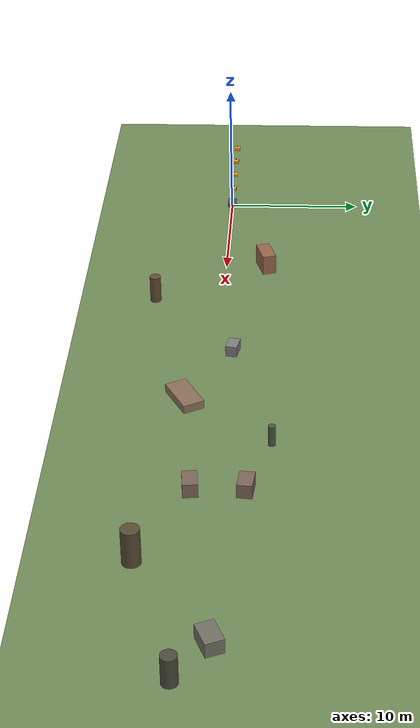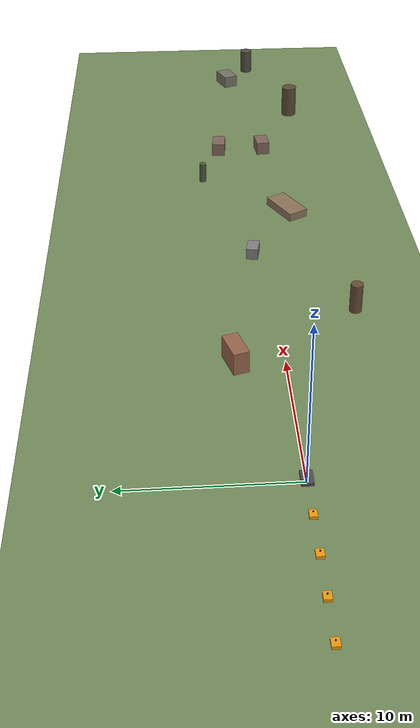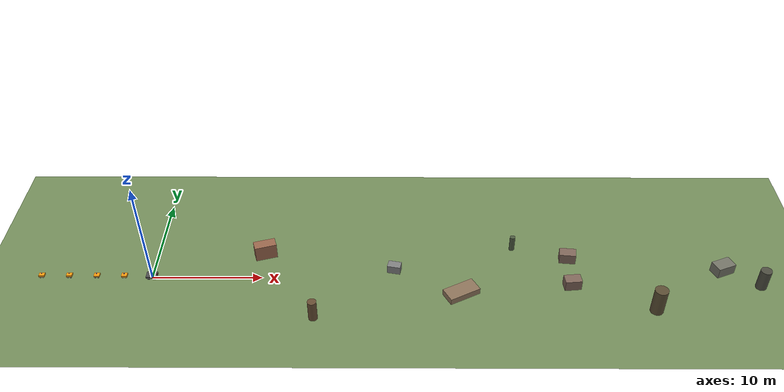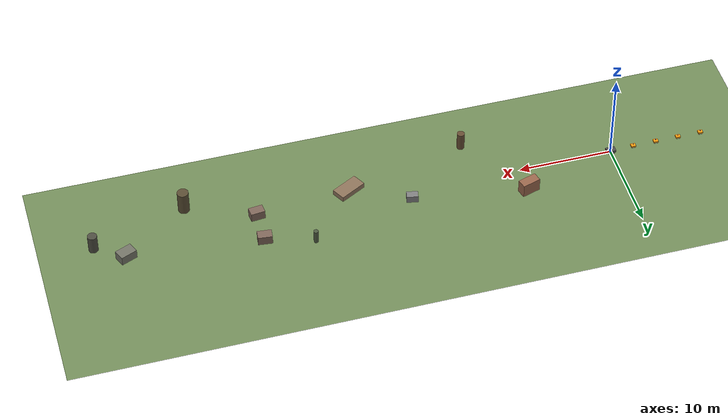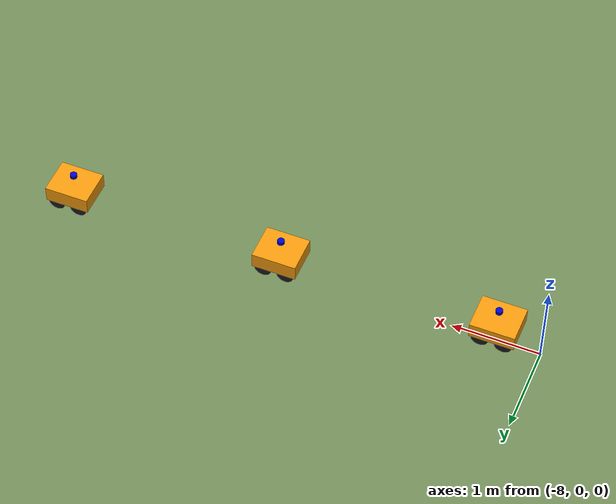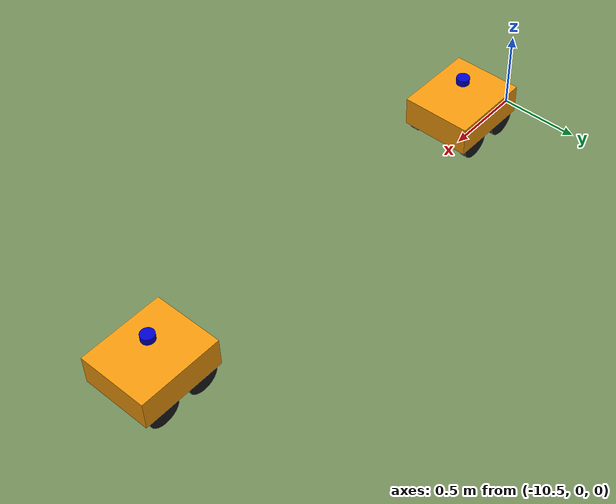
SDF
<?xml version="1.0"?>
<sdf version="1.9">
  <world name="phase1_region2_obstacles">

    <!-- Physics engine — computes gravity, collisions, forces every timestep -->
    <plugin filename="gz-sim-physics-system"
            name="gz::sim::systems::Physics">
    </plugin>

    <!-- Lets you spawn/delete models from the GUI or command line -->
    <plugin filename="gz-sim-user-commands-system"
            name="gz::sim::systems::UserCommands">
    </plugin>

    <!-- Sends the 3D scene to the Gazebo GUI so you can see it -->
    <plugin filename="gz-sim-scene-broadcaster-system"
            name="gz::sim::systems::SceneBroadcaster">
    </plugin>

    <plugin filename="gz-sim-sensors-system"
            name="gz::sim::systems::Sensors">
      <render_engine>ogre2</render_engine>
    </plugin>

    <!--
      IMU system — required for IMU sensors to publish data.
      Separate from the Sensors plugin (which handles rendering sensors).
    -->
    <plugin filename="gz-sim-imu-system"
            name="gz::sim::systems::Imu">
    </plugin>

    <plugin filename="gz-sim-navsat-system"
            name="gz::sim::systems::NavSat">
    </plugin>

    <!-- Contact system — detects physical contacts between objects -->
    <plugin filename="gz-sim-contact-system"
            name="gz::sim::systems::Contact">
    </plugin>

    <!-- ══════════════════════════════════════════════════════════
         WORLD SETTINGS
         ══════════════════════════════════════════════════════════ -->

    <!-- Gravity: 9.8 m/s² downward (Earth standard) -->
    <gravity>0 0 -9.8</gravity>

    <!-- Magnetic field (for IMU magnetometer, approximate for Detroit MI) -->
    <magnetic_field>5.5645e-6 2.28758e-5 -4.23884e-5</magnetic_field>

    <spherical_coordinates>
      <surface_model>EARTH_WGS84</surface_model>
      <world_frame_orientation>ENU</world_frame_orientation>
      <latitude_deg>42.4129540624</latitude_deg>
      <longitude_deg>-83.1360653105</longitude_deg>
      <elevation>190.0</elevation>
      <heading_deg>0</heading_deg>
    </spherical_coordinates>

    <!-- Physics timestep: 1ms = 1000 Hz. Standard for ground robots. -->
    <physics name="1ms" type="ode">
      <max_step_size>0.001</max_step_size>
      <real_time_factor>1.0</real_time_factor>
      <dart>
        <collision_detector>bullet</collision_detector>
      </dart>
    </physics>

    <!-- ══════════════════════════════════════════════════════════
         SCENE — lighting and sky
         ══════════════════════════════════════════════════════════ -->
    <scene>
      <ambient>0.4 0.4 0.4 1</ambient>
      <background>0.7 0.85 1.0 1</background>  <!-- light blue sky -->
      <shadows>true</shadows>
    </scene>

    <!-- Sun: directional light from above-left, casts shadows -->
    <light type="directional" name="sun">
      <cast_shadows>true</cast_shadows>
      <pose>0 0 100 0 0 0</pose>
      <diffuse>0.9 0.9 0.9 1</diffuse>
      <specular>0.3 0.3 0.3 1</specular>
      <attenuation>
        <range>1000</range>
        <constant>0.9</constant>
        <linear>0.01</linear>
        <quadratic>0.001</quadratic>
      </attenuation>
      <direction>-0.5 0.1 -0.9</direction>
    </light>

    <model name="ground_plane">
      <static>true</static>
      <link name="link">
        <collision name="collision">
          <geometry>
            <plane>
              <normal>0 0 1</normal>  <!-- Z-up -->
              <size>200 200</size>
            </plane>
          </geometry>
          <surface>
            <friction>
              <ode><mu>1.0</mu><mu2>1.0</mu2></ode>
            </friction>
          </surface>
        </collision>

        <visual name="visual">
          <geometry>
            <plane>
              <normal>0 0 1</normal>
              <size>200 200</size>
            </plane>
          </geometry>
          <material>
            <ambient>0.45 0.55 0.35 1</ambient>
            <diffuse>0.45 0.55 0.35 1</diffuse>  <!-- olive green, like grass -->
          </material>
        </visual>
      </link>
    </model>

    <!-- Large box — simulates collapsed wall or rubble pile -->
    <model name="obstacle_box_1">
      <static>true</static>
      <pose>10 3 0.75 0 0 0.3</pose>  <!-- slightly rotated -->
      <link name="link">
        <collision name="c"><geometry><box><size>2.0 1.0 1.5</size></box></geometry></collision>
        <visual name="v"><geometry><box><size>2.0 1.0 1.5</size></box></geometry>
          <material><ambient>0.6 0.4 0.3 1</ambient><diffuse>0.6 0.4 0.3 1</diffuse></material>
        </visual>
      </link>
    </model>

    <!-- Cylinder — tree trunk or pillar -->
    <model name="obstacle_cyl_1">
      <static>true</static>
      <pose>15 -5 1.0 0 0 0</pose>
      <link name="link">
        <collision name="c"><geometry><cylinder><radius>0.4</radius><length>2.0</length></cylinder></geometry></collision>
        <visual name="v"><geometry><cylinder><radius>0.4</radius><length>2.0</length></cylinder></geometry>
          <material><ambient>0.4 0.3 0.2 1</ambient><diffuse>0.4 0.3 0.2 1</diffuse></material>
        </visual>
      </link>
    </model>

    <!-- Small box — debris -->
    <model name="obstacle_box_2">
      <static>true</static>
      <pose>22 1 0.4 0 0 -0.2</pose>
      <link name="link">
        <collision name="c"><geometry><box><size>1.2 0.8 0.8</size></box></geometry></collision>
        <visual name="v"><geometry><box><size>1.2 0.8 0.8</size></box></geometry>
          <material><ambient>0.5 0.5 0.5 1</ambient><diffuse>0.5 0.5 0.5 1</diffuse></material>
        </visual>
      </link>
    </model>

    <!-- Wide low box — forces the robot to go around, not over -->
    <model name="obstacle_box_3">
      <static>true</static>
      <pose>28 -2 0.3 0 0 0.5</pose>
      <link name="link">
        <collision name="c"><geometry><box><size>3.0 1.5 0.6</size></box></geometry></collision>
        <visual name="v"><geometry><box><size>3.0 1.5 0.6</size></box></geometry>
          <material><ambient>0.55 0.45 0.35 1</ambient><diffuse>0.55 0.45 0.35 1</diffuse></material>
        </visual>
      </link>
    </model>

    <!-- Cylinder — narrow but tall, easy to miss -->
    <model name="obstacle_cyl_2">
      <static>true</static>
      <pose>33 4 0.75 0 0 0</pose>
      <link name="link">
        <collision name="c"><geometry><cylinder><radius>0.25</radius><length>1.5</length></cylinder></geometry></collision>
        <visual name="v"><geometry><cylinder><radius>0.25</radius><length>1.5</length></cylinder></geometry>
          <material><ambient>0.3 0.35 0.25 1</ambient><diffuse>0.3 0.35 0.25 1</diffuse></material>
        </visual>
      </link>
    </model>

    <!-- Two boxes forming a narrow gap — tests tight maneuvering -->
    <model name="obstacle_box_4">
      <static>true</static>
      <pose>38 -1 0.5 0 0 0.1</pose>
      <link name="link">
        <collision name="c"><geometry><box><size>1.5 1.0 1.0</size></box></geometry></collision>
        <visual name="v"><geometry><box><size>1.5 1.0 1.0</size></box></geometry>
          <material><ambient>0.5 0.4 0.35 1</ambient><diffuse>0.5 0.4 0.35 1</diffuse></material>
        </visual>
      </link>
    </model>

    <model name="obstacle_box_5">
      <static>true</static>
      <pose>38 2.5 0.5 0 0 -0.1</pose>
      <link name="link">
        <collision name="c"><geometry><box><size>1.5 1.0 1.0</size></box></geometry></collision>
        <visual name="v"><geometry><box><size>1.5 1.0 1.0</size></box></geometry>
          <material><ambient>0.5 0.4 0.35 1</ambient><diffuse>0.5 0.4 0.35 1</diffuse></material>
        </visual>
      </link>
    </model>

    <!-- Large cylinder — big tree -->
    <model name="obstacle_cyl_3">
      <static>true</static>
      <pose>45 -4 1.25 0 0 0</pose>
      <link name="link">
        <collision name="c"><geometry><cylinder><radius>0.6</radius><length>2.5</length></cylinder></geometry></collision>
        <visual name="v"><geometry><cylinder><radius>0.6</radius><length>2.5</length></cylinder></geometry>
          <material><ambient>0.35 0.3 0.2 1</ambient><diffuse>0.35 0.3 0.2 1</diffuse></material>
        </visual>
      </link>
    </model>

    <!-- Box near the destination — last obstacle -->
    <model name="obstacle_box_6">
      <static>true</static>
      <pose>52 1 0.5 0 0 0.4</pose>
      <link name="link">
        <collision name="c"><geometry><box><size>1.8 1.2 1.0</size></box></geometry></collision>
        <visual name="v"><geometry><box><size>1.8 1.2 1.0</size></box></geometry>
          <material><ambient>0.45 0.45 0.4 1</ambient><diffuse>0.45 0.45 0.4 1</diffuse></material>
        </visual>
      </link>
    </model>

    <!-- Cylinder right before destination — forces a final turn -->
    <model name="obstacle_cyl_4">
      <static>true</static>
      <pose>55 -1 1.0 0 0 0</pose>
      <link name="link">
        <collision name="c"><geometry><cylinder><radius>0.5</radius><length>2.0</length></cylinder></geometry></collision>
        <visual name="v"><geometry><cylinder><radius>0.5</radius><length>2.0</length></cylinder></geometry>
          <material><ambient>0.3 0.3 0.25 1</ambient><diffuse>0.3 0.3 0.25 1</diffuse></material>
        </visual>
      </link>
    </model>

    <include>
      <uri>model://husky_leader</uri>
      <name>leader</name>
      <pose>0 0 0.3 0 0 0</pose>
    </include>

    <include>
      <uri>model://follower_1</uri>
      <name>follower_1</name>
      <pose>-2.5 0 0.3 0 0 0</pose>
    </include>

    <include>
      <uri>model://follower_2</uri>
      <name>follower_2</name>
      <pose>-5.0 0 0.3 0 0 0</pose>
    </include>

    <include>
      <uri>model://follower_3</uri>
      <name>follower_3</name>
      <pose>-7.5 0 0.3 0 0 0</pose>
    </include>

    <include>
      <uri>model://follower_4</uri>
      <name>follower_4</name>
      <pose>-10.0 0 0.3 0 0 0</pose>
    </include>

  </world>
</sdf>

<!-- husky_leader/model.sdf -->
<sdf version="1.9">
  <model name="husky_leader">

    <!--
      static = false means physics applies (gravity, collisions, forces).
      If true, the robot would float in place and ignore cmd_vel.
    -->
    <static>false</static>

    <link name="base_link">
      <inertial>
        <mass>50.0</mass>
        <inertia>
          <ixx>1.0417</ixx>
          <iyy>1.5042</iyy>
          <izz>2.1042</izz>
          <ixy>0</ixy>
          <ixz>0</ixz>
          <iyz>0</iyz>
        </inertia>
      </inertial>

      <!--
        Collision: the shape Gazebo uses to detect contacts.
        Simpler than visual — a box is fine for a rectangular robot.
      -->
      <collision name="chassis_collision">
        <geometry>
          <box><size>0.99 0.67 0.20</size></box>
        </geometry>
      </collision>

      <visual name="chassis_visual">
        <geometry>
          <box><size>0.99 0.67 0.20</size></box>
        </geometry>
        <material>
          <ambient>0.2 0.2 0.2 1</ambient>
          <diffuse>0.3 0.3 0.3 1</diffuse>  <!-- dark grey, like a real Husky -->
        </material>
      </visual>

      <sensor name="imu_sensor" type="imu">
        <always_on>true</always_on>
        <update_rate>100</update_rate>  <!-- 100 Hz, typical for IMU -->
        <topic>leader/imu/data</topic>
        <imu>
          <angular_velocity>
            <x><noise type="gaussian"><mean>0</mean><stddev>0.001</stddev></noise></x>
            <y><noise type="gaussian"><mean>0</mean><stddev>0.001</stddev></noise></y>
            <z><noise type="gaussian"><mean>0</mean><stddev>0.001</stddev></noise></z>
          </angular_velocity>
          <linear_acceleration>
            <x><noise type="gaussian"><mean>0</mean><stddev>0.01</stddev></noise></x>
            <y><noise type="gaussian"><mean>0</mean><stddev>0.01</stddev></noise></y>
            <z><noise type="gaussian"><mean>0</mean><stddev>0.01</stddev></noise></z>
          </linear_acceleration>
        </imu>
      </sensor>

      <sensor name="navsat_sensor" type="navsat">
        <always_on>true</always_on>
        <update_rate>5</update_rate>  <!-- 5 Hz, typical for GPS modules -->
        <topic>leader/navsat</topic>
        <navsat>
          <position_sensing>
            <horizontal>
              <!-- Noise here is applied directly to lat/lon (degrees), not meters.
                   0.5 m of real-world GPS error ≈ 0.5 / 111320 deg ≈ 0.0000045 deg. -->
              <noise type="gaussian"><mean>0</mean><stddev>0.0000045</stddev></noise>
            </horizontal>
            <vertical>
              <!-- Altitude stays in meters, so 1.0 m stddev is fine as-is. -->
              <noise type="gaussian"><mean>0</mean><stddev>1.0</stddev></noise>
            </vertical>
          </position_sensing>
        </navsat>
      </sensor>

    </link>

    <link name="lidar_link">
      <pose relative_to="base_link">0 0 0.20 0 0 0</pose>
      <!-- x y z  roll pitch yaw — 0.20m above chassis center -->

      <inertial>
        <mass>0.5</mass>
        <inertia>
          <ixx>0.001</ixx><iyy>0.001</iyy><izz>0.001</izz>
          <ixy>0</ixy><ixz>0</ixz><iyz>0</iyz>
        </inertia>
      </inertial>

      <collision name="lidar_collision">
        <geometry><cylinder><radius>0.05</radius><length>0.05</length></cylinder></geometry>
      </collision>

      <visual name="lidar_visual">
        <geometry><cylinder><radius>0.05</radius><length>0.05</length></cylinder></geometry>
        <material>
          <ambient>0.0 0.0 0.8 1</ambient>
          <diffuse>0.0 0.0 0.8 1</diffuse>  <!-- blue cylinder -->
        </material>
      </visual>

      <sensor name="lidar_sensor" type="gpu_lidar">
        <always_on>true</always_on>
        <update_rate>10</update_rate>  <!-- 10 Hz scan rate -->
        <topic>leader/scan</topic>
        <lidar>
          <scan>
            <horizontal>
              <samples>360</samples>        <!-- one ray per degree -->
              <resolution>1</resolution>
              <min_angle>-3.14159</min_angle>
              <max_angle>3.14159</max_angle>
            </horizontal>
          </scan>
          <range>
            <min>0.15</min>   <!-- ignore anything closer than 15 cm -->
            <max>30.0</max>   <!-- 30 m max range -->
            <resolution>0.01</resolution>
          </range>
          <noise>
            <type>gaussian</type>
            <mean>0</mean>
            <stddev>0.01</stddev>
          </noise>
        </lidar>
      </sensor>

    </link>

    <!-- Fixed joint: bolt the lidar mount to the chassis -->
    <joint name="lidar_joint" type="fixed">
      <parent>base_link</parent>
      <child>lidar_link</child>
    </joint>

    <link name="camera_link">
      <!-- Mounted at front of chassis, looking forward -->
      <pose relative_to="base_link">0.49 0 0.15 0 0 0</pose>

      <inertial>
        <mass>0.2</mass>
        <inertia>
          <ixx>0.0001</ixx><iyy>0.0001</iyy><izz>0.0001</izz>
          <ixy>0</ixy><ixz>0</ixz><iyz>0</iyz>
        </inertia>
      </inertial>

      <collision name="camera_collision">
        <geometry><box><size>0.04 0.08 0.04</size></box></geometry>
      </collision>

      <visual name="camera_visual">
        <geometry><box><size>0.04 0.08 0.04</size></box></geometry>
        <material>
          <ambient>0.8 0.0 0.0 1</ambient>
          <diffuse>0.8 0.0 0.0 1</diffuse>  <!-- red box -->
        </material>
      </visual>

      <sensor name="camera_sensor" type="camera">
        <always_on>true</always_on>
        <update_rate>30</update_rate>
        <topic>leader/camera/image</topic>
        <camera>
          <horizontal_fov>1.3962634</horizontal_fov>
          <image>
            <width>640</width>
            <height>480</height>
            <format>R8G8B8</format>
          </image>
          <clip>
            <near>0.1</near>
            <far>100.0</far>
          </clip>
          <noise>
            <type>gaussian</type>
            <mean>0</mean>
            <stddev>0.005</stddev>
          </noise>
        </camera>
      </sensor>

    </link>

    <joint name="camera_joint" type="fixed">
      <parent>base_link</parent>
      <child>camera_link</child>
    </joint>

    <!-- ── FRONT LEFT WHEEL ── -->
    <link name="front_left_wheel">
      <pose relative_to="base_link">0.256 0.2855 -0.1 -1.5708 0 0</pose>

      <inertial>
        <mass>2.5</mass>
        <inertia>
          <ixx>0.0073</ixx><iyy>0.0073</iyy><izz>0.0036</izz>
          <ixy>0</ixy><ixz>0</ixz><iyz>0</iyz>
        </inertia>
      </inertial>

      <collision name="collision">
        <geometry><cylinder><radius>0.17</radius><length>0.08</length></cylinder></geometry>
        <surface>
          <friction>
            <ode><mu>1.0</mu><mu2>0.5</mu2></ode>
          </friction>
          <contact>
            <ode><kp>1e6</kp><kd>500</kd></ode>
          </contact>
        </surface>
      </collision>

      <visual name="visual">
        <geometry><cylinder><radius>0.17</radius><length>0.08</length></cylinder></geometry>
        <material>
          <ambient>0.1 0.1 0.1 1</ambient>
          <diffuse>0.1 0.1 0.1 1</diffuse>  <!-- black wheels -->
        </material>
      </visual>
    </link>

    <joint name="front_left_wheel_joint" type="revolute">
      <parent>base_link</parent>
      <child>front_left_wheel</child>
      <axis>
        <xyz>0 0 1</xyz>  <!-- rotation axis: Z in wheel frame = Y in world (because of the roll) -->
        <limit><lower>-1e16</lower><upper>1e16</upper></limit>  <!-- unlimited rotation -->
      </axis>
    </joint>

    <!-- ── FRONT RIGHT WHEEL ── -->
    <link name="front_right_wheel">
      <pose relative_to="base_link">0.256 -0.2855 -0.1 -1.5708 0 0</pose>

      <inertial>
        <mass>2.5</mass>
        <inertia>
          <ixx>0.0073</ixx><iyy>0.0073</iyy><izz>0.0036</izz>
          <ixy>0</ixy><ixz>0</ixz><iyz>0</iyz>
        </inertia>
      </inertial>

      <collision name="collision">
        <geometry><cylinder><radius>0.17</radius><length>0.08</length></cylinder></geometry>
        <surface>
          <friction>
            <ode><mu>1.0</mu><mu2>0.5</mu2></ode>
          </friction>
          <contact>
            <ode><kp>1e6</kp><kd>500</kd></ode>
          </contact>
        </surface>
      </collision>

      <visual name="visual">
        <geometry><cylinder><radius>0.17</radius><length>0.08</length></cylinder></geometry>
        <material>
          <ambient>0.1 0.1 0.1 1</ambient>
          <diffuse>0.1 0.1 0.1 1</diffuse>
        </material>
      </visual>
    </link>

    <joint name="front_right_wheel_joint" type="revolute">
      <parent>base_link</parent>
      <child>front_right_wheel</child>
      <axis>
        <xyz>0 0 1</xyz>
        <limit><lower>-1e16</lower><upper>1e16</upper></limit>
      </axis>
    </joint>

    <!-- ── REAR LEFT WHEEL ── -->
    <link name="rear_left_wheel">
      <pose relative_to="base_link">-0.256 0.2855 -0.1 -1.5708 0 0</pose>

      <inertial>
        <mass>2.5</mass>
        <inertia>
          <ixx>0.0073</ixx><iyy>0.0073</iyy><izz>0.0036</izz>
          <ixy>0</ixy><ixz>0</ixz><iyz>0</iyz>
        </inertia>
      </inertial>

      <collision name="collision">
        <geometry><cylinder><radius>0.17</radius><length>0.08</length></cylinder></geometry>
        <surface>
          <friction>
            <ode><mu>1.0</mu><mu2>0.5</mu2></ode>
          </friction>
          <contact>
            <ode><kp>1e6</kp><kd>500</kd></ode>
          </contact>
        </surface>
      </collision>

      <visual name="visual">
        <geometry><cylinder><radius>0.17</radius><length>0.08</length></cylinder></geometry>
        <material>
          <ambient>0.1 0.1 0.1 1</ambient>
          <diffuse>0.1 0.1 0.1 1</diffuse>
        </material>
      </visual>
    </link>

    <joint name="rear_left_wheel_joint" type="revolute">
      <parent>base_link</parent>
      <child>rear_left_wheel</child>
      <axis>
        <xyz>0 0 1</xyz>
        <limit><lower>-1e16</lower><upper>1e16</upper></limit>
      </axis>
    </joint>

    <!-- ── REAR RIGHT WHEEL ── -->
    <link name="rear_right_wheel">
      <pose relative_to="base_link">-0.256 -0.2855 -0.1 -1.5708 0 0</pose>

      <inertial>
        <mass>2.5</mass>
        <inertia>
          <ixx>0.0073</ixx><iyy>0.0073</iyy><izz>0.0036</izz>
          <ixy>0</ixy><ixz>0</ixz><iyz>0</iyz>
        </inertia>
      </inertial>

      <collision name="collision">
        <geometry><cylinder><radius>0.17</radius><length>0.08</length></cylinder></geometry>
        <surface>
          <friction>
            <ode><mu>1.0</mu><mu2>0.5</mu2></ode>
          </friction>
          <contact>
            <ode><kp>1e6</kp><kd>500</kd></ode>
          </contact>
        </surface>
      </collision>

      <visual name="visual">
        <geometry><cylinder><radius>0.17</radius><length>0.08</length></cylinder></geometry>
        <material>
          <ambient>0.1 0.1 0.1 1</ambient>
          <diffuse>0.1 0.1 0.1 1</diffuse>
        </material>
      </visual>
    </link>

    <joint name="rear_right_wheel_joint" type="revolute">
      <parent>base_link</parent>
      <child>rear_right_wheel</child>
      <axis>
        <xyz>0 0 1</xyz>
        <limit><lower>-1e16</lower><upper>1e16</upper></limit>
      </axis>
    </joint>

    <plugin filename="gz-sim-diff-drive-system"
            name="gz::sim::systems::DiffDrive">
      <left_joint>front_left_wheel_joint</left_joint>
      <left_joint>rear_left_wheel_joint</left_joint>
      <right_joint>front_right_wheel_joint</right_joint>
      <right_joint>rear_right_wheel_joint</right_joint>
      <wheel_separation>0.571</wheel_separation>
      <wheel_radius>0.17</wheel_radius>
      <max_linear_acceleration>1.0</max_linear_acceleration>
      <max_angular_acceleration>2.0</max_angular_acceleration>
      <max_linear_velocity>2.0</max_linear_velocity>
      <min_linear_velocity>-2.0</min_linear_velocity>
      <max_angular_velocity>2.0</max_angular_velocity>
      <min_angular_velocity>-2.0</min_angular_velocity>
      <topic>leader/cmd_vel</topic>
      <odom_topic>leader/odom</odom_topic>
      <tf_topic>leader/tf</tf_topic>
      <odom_publish_frequency>50</odom_publish_frequency>
    </plugin>

    <!--
      JointStatePublisher: publishes joint positions + velocities.
      Needed by robot_state_publisher to know wheel angles for TF.
    -->
    <plugin filename="gz-sim-joint-state-publisher-system"
            name="gz::sim::systems::JointStatePublisher">
      <topic>leader/joint_states</topic>
    </plugin>

  </model>
</sdf>

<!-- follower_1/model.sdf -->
<sdf version="1.9">
  <model name="follower_1">
    <static>false</static>

    <link name="base_link">
      <inertial>
        <mass>17.0</mass>
        <inertia>
          <ixx>0.3099</ixx>
          <iyy>0.4136</iyy>
          <izz>0.6275</izz>
          <ixy>0</ixy><ixz>0</ixz><iyz>0</iyz>
        </inertia>
      </inertial>

      <collision name="chassis_collision">
        <geometry><box><size>0.508 0.43 0.184</size></box></geometry>
      </collision>

      <visual name="chassis_visual">
        <geometry><box><size>0.508 0.43 0.184</size></box></geometry>
        <material>
          <ambient>0.85 0.55 0.05 1</ambient>
          <diffuse>0.95 0.6 0.05 1</diffuse>  <!-- Jackal yellow, to visually tell followers from the leader -->
        </material>
      </visual>

      <sensor name="imu_sensor" type="imu">
        <always_on>true</always_on>
        <update_rate>100</update_rate>
        <topic>follower_1/imu/data</topic>
        <imu>
          <angular_velocity>
            <x><noise type="gaussian"><mean>0</mean><stddev>0.001</stddev></noise></x>
            <y><noise type="gaussian"><mean>0</mean><stddev>0.001</stddev></noise></y>
            <z><noise type="gaussian"><mean>0</mean><stddev>0.001</stddev></noise></z>
          </angular_velocity>
          <linear_acceleration>
            <x><noise type="gaussian"><mean>0</mean><stddev>0.01</stddev></noise></x>
            <y><noise type="gaussian"><mean>0</mean><stddev>0.01</stddev></noise></y>
            <z><noise type="gaussian"><mean>0</mean><stddev>0.01</stddev></noise></z>
          </linear_acceleration>
        </imu>
      </sensor>

      <sensor name="navsat_sensor" type="navsat">
        <always_on>true</always_on>
        <update_rate>5</update_rate>
        <topic>follower_1/navsat</topic>
        <navsat>
          <position_sensing>
            <horizontal>
              <noise type="gaussian"><mean>0</mean><stddev>0.0000045</stddev></noise>
            </horizontal>
            <vertical>
              <noise type="gaussian"><mean>0</mean><stddev>1.0</stddev></noise>
            </vertical>
          </position_sensing>
        </navsat>
      </sensor>
    </link>

    <link name="lidar_link">
      <pose relative_to="base_link">0 0 0.192 0 0 0</pose>
      <inertial>
        <mass>0.3</mass>
        <inertia><ixx>0.0005</ixx><iyy>0.0005</iyy><izz>0.0005</izz><ixy>0</ixy><ixz>0</ixz><iyz>0</iyz></inertia>
      </inertial>
      <collision name="lidar_collision">
        <geometry><cylinder><radius>0.04</radius><length>0.04</length></cylinder></geometry>
      </collision>
      <visual name="lidar_visual">
        <geometry><cylinder><radius>0.04</radius><length>0.04</length></cylinder></geometry>
        <material><ambient>0.0 0.0 0.8 1</ambient><diffuse>0.0 0.0 0.8 1</diffuse></material>
      </visual>
      <sensor name="lidar_sensor" type="gpu_lidar">
        <always_on>true</always_on>
        <update_rate>10</update_rate>
        <topic>follower_1/scan</topic>
        <lidar>
          <scan>
            <horizontal>
              <samples>360</samples>
              <resolution>1</resolution>
              <min_angle>-3.14159</min_angle>
              <max_angle>3.14159</max_angle>
            </horizontal>
          </scan>
          <range><min>0.15</min><max>30.0</max><resolution>0.01</resolution></range>
          <noise><type>gaussian</type><mean>0</mean><stddev>0.01</stddev></noise>
        </lidar>
      </sensor>
    </link>
    <joint name="lidar_joint" type="fixed">
      <parent>base_link</parent>
      <child>lidar_link</child>
    </joint>

    <link name="camera_link">
      <pose relative_to="base_link">0.214 0 0.020 0 0 0</pose>
      <inertial>
        <mass>0.15</mass>
        <inertia><ixx>0.0001</ixx><iyy>0.0001</iyy><izz>0.0001</izz><ixy>0</ixy><ixz>0</ixz><iyz>0</iyz></inertia>
      </inertial>
      <collision name="camera_collision">
        <geometry><box><size>0.03 0.06 0.03</size></box></geometry>
      </collision>
      <visual name="camera_visual">
        <geometry><box><size>0.03 0.06 0.03</size></box></geometry>
        <material><ambient>0.8 0.0 0.0 1</ambient><diffuse>0.8 0.0 0.0 1</diffuse></material>
      </visual>
      <sensor name="camera_sensor" type="camera">
        <always_on>true</always_on>
        <update_rate>30</update_rate>
        <topic>follower_1/camera/image</topic>
        <camera>
          <horizontal_fov>1.3962634</horizontal_fov>
          <image><width>640</width><height>480</height><format>R8G8B8</format></image>
          <clip><near>0.1</near><far>100.0</far></clip>
          <noise><type>gaussian</type><mean>0</mean><stddev>0.005</stddev></noise>
        </camera>
      </sensor>
    </link>
    <joint name="camera_joint" type="fixed">
      <parent>base_link</parent>
      <child>camera_link</child>
    </joint>

    <link name="front_left_wheel">
      <pose relative_to="base_link">0.131 0.188 -0.092 -1.5708 0 0</pose>
      <inertial>
        <mass>0.7</mass>
        <inertia><ixx>0.002</ixx><iyy>0.002</iyy><izz>0.001</izz><ixy>0</ixy><ixz>0</ixz><iyz>0</iyz></inertia>
      </inertial>
      <collision name="collision">
        <geometry><cylinder><radius>0.098</radius><length>0.04</length></cylinder></geometry>
        <surface>
          <friction><ode><mu>1.0</mu><mu2>0.5</mu2></ode></friction>
          <contact><ode><kp>1e6</kp><kd>500</kd></ode></contact>
        </surface>
      </collision>
      <visual name="visual">
        <geometry><cylinder><radius>0.098</radius><length>0.04</length></cylinder></geometry>
        <material><ambient>0.1 0.1 0.1 1</ambient><diffuse>0.1 0.1 0.1 1</diffuse></material>
      </visual>
    </link>
    <joint name="front_left_wheel_joint" type="revolute">
      <parent>base_link</parent>
      <child>front_left_wheel</child>
      <axis><xyz>0 0 1</xyz><limit><lower>-1e16</lower><upper>1e16</upper></limit></axis>
    </joint>

    <link name="front_right_wheel">
      <pose relative_to="base_link">0.131 -0.188 -0.092 -1.5708 0 0</pose>
      <inertial>
        <mass>0.7</mass>
        <inertia><ixx>0.002</ixx><iyy>0.002</iyy><izz>0.001</izz><ixy>0</ixy><ixz>0</ixz><iyz>0</iyz></inertia>
      </inertial>
      <collision name="collision">
        <geometry><cylinder><radius>0.098</radius><length>0.04</length></cylinder></geometry>
        <surface>
          <friction><ode><mu>1.0</mu><mu2>0.5</mu2></ode></friction>
          <contact><ode><kp>1e6</kp><kd>500</kd></ode></contact>
        </surface>
      </collision>
      <visual name="visual">
        <geometry><cylinder><radius>0.098</radius><length>0.04</length></cylinder></geometry>
        <material><ambient>0.1 0.1 0.1 1</ambient><diffuse>0.1 0.1 0.1 1</diffuse></material>
      </visual>
    </link>
    <joint name="front_right_wheel_joint" type="revolute">
      <parent>base_link</parent>
      <child>front_right_wheel</child>
      <axis><xyz>0 0 1</xyz><limit><lower>-1e16</lower><upper>1e16</upper></limit></axis>
    </joint>

    <link name="rear_left_wheel">
      <pose relative_to="base_link">-0.131 0.188 -0.092 -1.5708 0 0</pose>
      <inertial>
        <mass>0.7</mass>
        <inertia><ixx>0.002</ixx><iyy>0.002</iyy><izz>0.001</izz><ixy>0</ixy><ixz>0</ixz><iyz>0</iyz></inertia>
      </inertial>
      <collision name="collision">
        <geometry><cylinder><radius>0.098</radius><length>0.04</length></cylinder></geometry>
        <surface>
          <friction><ode><mu>1.0</mu><mu2>0.5</mu2></ode></friction>
          <contact><ode><kp>1e6</kp><kd>500</kd></ode></contact>
        </surface>
      </collision>
      <visual name="visual">
        <geometry><cylinder><radius>0.098</radius><length>0.04</length></cylinder></geometry>
        <material><ambient>0.1 0.1 0.1 1</ambient><diffuse>0.1 0.1 0.1 1</diffuse></material>
      </visual>
    </link>
    <joint name="rear_left_wheel_joint" type="revolute">
      <parent>base_link</parent>
      <child>rear_left_wheel</child>
      <axis><xyz>0 0 1</xyz><limit><lower>-1e16</lower><upper>1e16</upper></limit></axis>
    </joint>

    <link name="rear_right_wheel">
      <pose relative_to="base_link">-0.131 -0.188 -0.092 -1.5708 0 0</pose>
      <inertial>
        <mass>0.7</mass>
        <inertia><ixx>0.002</ixx><iyy>0.002</iyy><izz>0.001</izz><ixy>0</ixy><ixz>0</ixz><iyz>0</iyz></inertia>
      </inertial>
      <collision name="collision">
        <geometry><cylinder><radius>0.098</radius><length>0.04</length></cylinder></geometry>
        <surface>
          <friction><ode><mu>1.0</mu><mu2>0.5</mu2></ode></friction>
          <contact><ode><kp>1e6</kp><kd>500</kd></ode></contact>
        </surface>
      </collision>
      <visual name="visual">
        <geometry><cylinder><radius>0.098</radius><length>0.04</length></cylinder></geometry>
        <material><ambient>0.1 0.1 0.1 1</ambient><diffuse>0.1 0.1 0.1 1</diffuse></material>
      </visual>
    </link>
    <joint name="rear_right_wheel_joint" type="revolute">
      <parent>base_link</parent>
      <child>rear_right_wheel</child>
      <axis><xyz>0 0 1</xyz><limit><lower>-1e16</lower><upper>1e16</upper></limit></axis>
    </joint>

    <plugin filename="gz-sim-diff-drive-system"
            name="gz::sim::systems::DiffDrive">
      <left_joint>front_left_wheel_joint</left_joint>
      <left_joint>rear_left_wheel_joint</left_joint>
      <right_joint>front_right_wheel_joint</right_joint>
      <right_joint>rear_right_wheel_joint</right_joint>
      <wheel_separation>0.375</wheel_separation>
      <wheel_radius>0.098</wheel_radius>
      <max_linear_acceleration>1.0</max_linear_acceleration>
      <max_angular_acceleration>2.0</max_angular_acceleration>
      <max_linear_velocity>2.0</max_linear_velocity>
      <min_linear_velocity>-2.0</min_linear_velocity>
      <max_angular_velocity>2.0</max_angular_velocity>
      <min_angular_velocity>-2.0</min_angular_velocity>
      <topic>follower_1/cmd_vel</topic>
      <odom_topic>follower_1/odom</odom_topic>
      <tf_topic>follower_1/tf</tf_topic>
      <odom_publish_frequency>50</odom_publish_frequency>
    </plugin>

    <plugin filename="gz-sim-joint-state-publisher-system"
            name="gz::sim::systems::JointStatePublisher">
      <topic>follower_1/joint_states</topic>
    </plugin>

  </model>
</sdf>

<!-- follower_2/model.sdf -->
<sdf version="1.9">
  <model name="follower_2">
    <static>false</static>

    <link name="base_link">
      <inertial>
        <mass>17.0</mass>
        <inertia>
          <ixx>0.3099</ixx>
          <iyy>0.4136</iyy>
          <izz>0.6275</izz>
          <ixy>0</ixy><ixz>0</ixz><iyz>0</iyz>
        </inertia>
      </inertial>

      <collision name="chassis_collision">
        <geometry><box><size>0.508 0.43 0.184</size></box></geometry>
      </collision>

      <visual name="chassis_visual">
        <geometry><box><size>0.508 0.43 0.184</size></box></geometry>
        <material>
          <ambient>0.85 0.55 0.05 1</ambient>
          <diffuse>0.95 0.6 0.05 1</diffuse>  <!-- Jackal yellow, to visually tell followers from the leader -->
        </material>
      </visual>

      <sensor name="imu_sensor" type="imu">
        <always_on>true</always_on>
        <update_rate>100</update_rate>
        <topic>follower_2/imu/data</topic>
        <imu>
          <angular_velocity>
            <x><noise type="gaussian"><mean>0</mean><stddev>0.001</stddev></noise></x>
            <y><noise type="gaussian"><mean>0</mean><stddev>0.001</stddev></noise></y>
            <z><noise type="gaussian"><mean>0</mean><stddev>0.001</stddev></noise></z>
          </angular_velocity>
          <linear_acceleration>
            <x><noise type="gaussian"><mean>0</mean><stddev>0.01</stddev></noise></x>
            <y><noise type="gaussian"><mean>0</mean><stddev>0.01</stddev></noise></y>
            <z><noise type="gaussian"><mean>0</mean><stddev>0.01</stddev></noise></z>
          </linear_acceleration>
        </imu>
      </sensor>

      <sensor name="navsat_sensor" type="navsat">
        <always_on>true</always_on>
        <update_rate>5</update_rate>
        <topic>follower_2/navsat</topic>
        <navsat>
          <position_sensing>
            <horizontal>
              <noise type="gaussian"><mean>0</mean><stddev>0.0000045</stddev></noise>
            </horizontal>
            <vertical>
              <noise type="gaussian"><mean>0</mean><stddev>1.0</stddev></noise>
            </vertical>
          </position_sensing>
        </navsat>
      </sensor>
    </link>

    <link name="lidar_link">
      <pose relative_to="base_link">0 0 0.192 0 0 0</pose>
      <inertial>
        <mass>0.3</mass>
        <inertia><ixx>0.0005</ixx><iyy>0.0005</iyy><izz>0.0005</izz><ixy>0</ixy><ixz>0</ixz><iyz>0</iyz></inertia>
      </inertial>
      <collision name="lidar_collision">
        <geometry><cylinder><radius>0.04</radius><length>0.04</length></cylinder></geometry>
      </collision>
      <visual name="lidar_visual">
        <geometry><cylinder><radius>0.04</radius><length>0.04</length></cylinder></geometry>
        <material><ambient>0.0 0.0 0.8 1</ambient><diffuse>0.0 0.0 0.8 1</diffuse></material>
      </visual>
      <sensor name="lidar_sensor" type="gpu_lidar">
        <always_on>true</always_on>
        <update_rate>10</update_rate>
        <topic>follower_2/scan</topic>
        <lidar>
          <scan>
            <horizontal>
              <samples>360</samples>
              <resolution>1</resolution>
              <min_angle>-3.14159</min_angle>
              <max_angle>3.14159</max_angle>
            </horizontal>
          </scan>
          <range><min>0.15</min><max>30.0</max><resolution>0.01</resolution></range>
          <noise><type>gaussian</type><mean>0</mean><stddev>0.01</stddev></noise>
        </lidar>
      </sensor>
    </link>
    <joint name="lidar_joint" type="fixed">
      <parent>base_link</parent>
      <child>lidar_link</child>
    </joint>

    <link name="camera_link">
      <pose relative_to="base_link">0.214 0 0.020 0 0 0</pose>
      <inertial>
        <mass>0.15</mass>
        <inertia><ixx>0.0001</ixx><iyy>0.0001</iyy><izz>0.0001</izz><ixy>0</ixy><ixz>0</ixz><iyz>0</iyz></inertia>
      </inertial>
      <collision name="camera_collision">
        <geometry><box><size>0.03 0.06 0.03</size></box></geometry>
      </collision>
      <visual name="camera_visual">
        <geometry><box><size>0.03 0.06 0.03</size></box></geometry>
        <material><ambient>0.8 0.0 0.0 1</ambient><diffuse>0.8 0.0 0.0 1</diffuse></material>
      </visual>
      <sensor name="camera_sensor" type="camera">
        <always_on>true</always_on>
        <update_rate>30</update_rate>
        <topic>follower_2/camera/image</topic>
        <camera>
          <horizontal_fov>1.3962634</horizontal_fov>
          <image><width>640</width><height>480</height><format>R8G8B8</format></image>
          <clip><near>0.1</near><far>100.0</far></clip>
          <noise><type>gaussian</type><mean>0</mean><stddev>0.005</stddev></noise>
        </camera>
      </sensor>
    </link>
    <joint name="camera_joint" type="fixed">
      <parent>base_link</parent>
      <child>camera_link</child>
    </joint>

    <link name="front_left_wheel">
      <pose relative_to="base_link">0.131 0.188 -0.092 -1.5708 0 0</pose>
      <inertial>
        <mass>0.7</mass>
        <inertia><ixx>0.002</ixx><iyy>0.002</iyy><izz>0.001</izz><ixy>0</ixy><ixz>0</ixz><iyz>0</iyz></inertia>
      </inertial>
      <collision name="collision">
        <geometry><cylinder><radius>0.098</radius><length>0.04</length></cylinder></geometry>
        <surface>
          <friction><ode><mu>1.0</mu><mu2>0.5</mu2></ode></friction>
          <contact><ode><kp>1e6</kp><kd>500</kd></ode></contact>
        </surface>
      </collision>
      <visual name="visual">
        <geometry><cylinder><radius>0.098</radius><length>0.04</length></cylinder></geometry>
        <material><ambient>0.1 0.1 0.1 1</ambient><diffuse>0.1 0.1 0.1 1</diffuse></material>
      </visual>
    </link>
    <joint name="front_left_wheel_joint" type="revolute">
      <parent>base_link</parent>
      <child>front_left_wheel</child>
      <axis><xyz>0 0 1</xyz><limit><lower>-1e16</lower><upper>1e16</upper></limit></axis>
    </joint>

    <link name="front_right_wheel">
      <pose relative_to="base_link">0.131 -0.188 -0.092 -1.5708 0 0</pose>
      <inertial>
        <mass>0.7</mass>
        <inertia><ixx>0.002</ixx><iyy>0.002</iyy><izz>0.001</izz><ixy>0</ixy><ixz>0</ixz><iyz>0</iyz></inertia>
      </inertial>
      <collision name="collision">
        <geometry><cylinder><radius>0.098</radius><length>0.04</length></cylinder></geometry>
        <surface>
          <friction><ode><mu>1.0</mu><mu2>0.5</mu2></ode></friction>
          <contact><ode><kp>1e6</kp><kd>500</kd></ode></contact>
        </surface>
      </collision>
      <visual name="visual">
        <geometry><cylinder><radius>0.098</radius><length>0.04</length></cylinder></geometry>
        <material><ambient>0.1 0.1 0.1 1</ambient><diffuse>0.1 0.1 0.1 1</diffuse></material>
      </visual>
    </link>
    <joint name="front_right_wheel_joint" type="revolute">
      <parent>base_link</parent>
      <child>front_right_wheel</child>
      <axis><xyz>0 0 1</xyz><limit><lower>-1e16</lower><upper>1e16</upper></limit></axis>
    </joint>

    <link name="rear_left_wheel">
      <pose relative_to="base_link">-0.131 0.188 -0.092 -1.5708 0 0</pose>
      <inertial>
        <mass>0.7</mass>
        <inertia><ixx>0.002</ixx><iyy>0.002</iyy><izz>0.001</izz><ixy>0</ixy><ixz>0</ixz><iyz>0</iyz></inertia>
      </inertial>
      <collision name="collision">
        <geometry><cylinder><radius>0.098</radius><length>0.04</length></cylinder></geometry>
        <surface>
          <friction><ode><mu>1.0</mu><mu2>0.5</mu2></ode></friction>
          <contact><ode><kp>1e6</kp><kd>500</kd></ode></contact>
        </surface>
      </collision>
      <visual name="visual">
        <geometry><cylinder><radius>0.098</radius><length>0.04</length></cylinder></geometry>
        <material><ambient>0.1 0.1 0.1 1</ambient><diffuse>0.1 0.1 0.1 1</diffuse></material>
      </visual>
    </link>
    <joint name="rear_left_wheel_joint" type="revolute">
      <parent>base_link</parent>
      <child>rear_left_wheel</child>
      <axis><xyz>0 0 1</xyz><limit><lower>-1e16</lower><upper>1e16</upper></limit></axis>
    </joint>

    <link name="rear_right_wheel">
      <pose relative_to="base_link">-0.131 -0.188 -0.092 -1.5708 0 0</pose>
      <inertial>
        <mass>0.7</mass>
        <inertia><ixx>0.002</ixx><iyy>0.002</iyy><izz>0.001</izz><ixy>0</ixy><ixz>0</ixz><iyz>0</iyz></inertia>
      </inertial>
      <collision name="collision">
        <geometry><cylinder><radius>0.098</radius><length>0.04</length></cylinder></geometry>
        <surface>
          <friction><ode><mu>1.0</mu><mu2>0.5</mu2></ode></friction>
          <contact><ode><kp>1e6</kp><kd>500</kd></ode></contact>
        </surface>
      </collision>
      <visual name="visual">
        <geometry><cylinder><radius>0.098</radius><length>0.04</length></cylinder></geometry>
        <material><ambient>0.1 0.1 0.1 1</ambient><diffuse>0.1 0.1 0.1 1</diffuse></material>
      </visual>
    </link>
    <joint name="rear_right_wheel_joint" type="revolute">
      <parent>base_link</parent>
      <child>rear_right_wheel</child>
      <axis><xyz>0 0 1</xyz><limit><lower>-1e16</lower><upper>1e16</upper></limit></axis>
    </joint>

    <plugin filename="gz-sim-diff-drive-system"
            name="gz::sim::systems::DiffDrive">
      <left_joint>front_left_wheel_joint</left_joint>
      <left_joint>rear_left_wheel_joint</left_joint>
      <right_joint>front_right_wheel_joint</right_joint>
      <right_joint>rear_right_wheel_joint</right_joint>
      <wheel_separation>0.375</wheel_separation>
      <wheel_radius>0.098</wheel_radius>
      <max_linear_acceleration>1.0</max_linear_acceleration>
      <max_angular_acceleration>2.0</max_angular_acceleration>
      <max_linear_velocity>2.0</max_linear_velocity>
      <min_linear_velocity>-2.0</min_linear_velocity>
      <max_angular_velocity>2.0</max_angular_velocity>
      <min_angular_velocity>-2.0</min_angular_velocity>
      <topic>follower_2/cmd_vel</topic>
      <odom_topic>follower_2/odom</odom_topic>
      <tf_topic>follower_2/tf</tf_topic>
      <odom_publish_frequency>50</odom_publish_frequency>
    </plugin>

    <plugin filename="gz-sim-joint-state-publisher-system"
            name="gz::sim::systems::JointStatePublisher">
      <topic>follower_2/joint_states</topic>
    </plugin>

  </model>
</sdf>

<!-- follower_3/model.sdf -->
<sdf version="1.9">
  <model name="follower_3">
    <static>false</static>

    <link name="base_link">
      <inertial>
        <mass>17.0</mass>
        <inertia>
          <ixx>0.3099</ixx>
          <iyy>0.4136</iyy>
          <izz>0.6275</izz>
          <ixy>0</ixy><ixz>0</ixz><iyz>0</iyz>
        </inertia>
      </inertial>

      <collision name="chassis_collision">
        <geometry><box><size>0.508 0.43 0.184</size></box></geometry>
      </collision>

      <visual name="chassis_visual">
        <geometry><box><size>0.508 0.43 0.184</size></box></geometry>
        <material>
          <ambient>0.85 0.55 0.05 1</ambient>
          <diffuse>0.95 0.6 0.05 1</diffuse>  <!-- Jackal yellow, to visually tell followers from the leader -->
        </material>
      </visual>

      <sensor name="imu_sensor" type="imu">
        <always_on>true</always_on>
        <update_rate>100</update_rate>
        <topic>follower_3/imu/data</topic>
        <imu>
          <angular_velocity>
            <x><noise type="gaussian"><mean>0</mean><stddev>0.001</stddev></noise></x>
            <y><noise type="gaussian"><mean>0</mean><stddev>0.001</stddev></noise></y>
            <z><noise type="gaussian"><mean>0</mean><stddev>0.001</stddev></noise></z>
          </angular_velocity>
          <linear_acceleration>
            <x><noise type="gaussian"><mean>0</mean><stddev>0.01</stddev></noise></x>
            <y><noise type="gaussian"><mean>0</mean><stddev>0.01</stddev></noise></y>
            <z><noise type="gaussian"><mean>0</mean><stddev>0.01</stddev></noise></z>
          </linear_acceleration>
        </imu>
      </sensor>

      <sensor name="navsat_sensor" type="navsat">
        <always_on>true</always_on>
        <update_rate>5</update_rate>
        <topic>follower_3/navsat</topic>
        <navsat>
          <position_sensing>
            <horizontal>
              <noise type="gaussian"><mean>0</mean><stddev>0.0000045</stddev></noise>
            </horizontal>
            <vertical>
              <noise type="gaussian"><mean>0</mean><stddev>1.0</stddev></noise>
            </vertical>
          </position_sensing>
        </navsat>
      </sensor>
    </link>

    <link name="lidar_link">
      <pose relative_to="base_link">0 0 0.192 0 0 0</pose>
      <inertial>
        <mass>0.3</mass>
        <inertia><ixx>0.0005</ixx><iyy>0.0005</iyy><izz>0.0005</izz><ixy>0</ixy><ixz>0</ixz><iyz>0</iyz></inertia>
      </inertial>
      <collision name="lidar_collision">
        <geometry><cylinder><radius>0.04</radius><length>0.04</length></cylinder></geometry>
      </collision>
      <visual name="lidar_visual">
        <geometry><cylinder><radius>0.04</radius><length>0.04</length></cylinder></geometry>
        <material><ambient>0.0 0.0 0.8 1</ambient><diffuse>0.0 0.0 0.8 1</diffuse></material>
      </visual>
      <sensor name="lidar_sensor" type="gpu_lidar">
        <always_on>true</always_on>
        <update_rate>10</update_rate>
        <topic>follower_3/scan</topic>
        <lidar>
          <scan>
            <horizontal>
              <samples>360</samples>
              <resolution>1</resolution>
              <min_angle>-3.14159</min_angle>
              <max_angle>3.14159</max_angle>
            </horizontal>
          </scan>
          <range><min>0.15</min><max>30.0</max><resolution>0.01</resolution></range>
          <noise><type>gaussian</type><mean>0</mean><stddev>0.01</stddev></noise>
        </lidar>
      </sensor>
    </link>
    <joint name="lidar_joint" type="fixed">
      <parent>base_link</parent>
      <child>lidar_link</child>
    </joint>

    <link name="camera_link">
      <pose relative_to="base_link">0.214 0 0.020 0 0 0</pose>
      <inertial>
        <mass>0.15</mass>
        <inertia><ixx>0.0001</ixx><iyy>0.0001</iyy><izz>0.0001</izz><ixy>0</ixy><ixz>0</ixz><iyz>0</iyz></inertia>
      </inertial>
      <collision name="camera_collision">
        <geometry><box><size>0.03 0.06 0.03</size></box></geometry>
      </collision>
      <visual name="camera_visual">
        <geometry><box><size>0.03 0.06 0.03</size></box></geometry>
        <material><ambient>0.8 0.0 0.0 1</ambient><diffuse>0.8 0.0 0.0 1</diffuse></material>
      </visual>
      <sensor name="camera_sensor" type="camera">
        <always_on>true</always_on>
        <update_rate>30</update_rate>
        <topic>follower_3/camera/image</topic>
        <camera>
          <horizontal_fov>1.3962634</horizontal_fov>
          <image><width>640</width><height>480</height><format>R8G8B8</format></image>
          <clip><near>0.1</near><far>100.0</far></clip>
          <noise><type>gaussian</type><mean>0</mean><stddev>0.005</stddev></noise>
        </camera>
      </sensor>
    </link>
    <joint name="camera_joint" type="fixed">
      <parent>base_link</parent>
      <child>camera_link</child>
    </joint>

    <link name="front_left_wheel">
      <pose relative_to="base_link">0.131 0.188 -0.092 -1.5708 0 0</pose>
      <inertial>
        <mass>0.7</mass>
        <inertia><ixx>0.002</ixx><iyy>0.002</iyy><izz>0.001</izz><ixy>0</ixy><ixz>0</ixz><iyz>0</iyz></inertia>
      </inertial>
      <collision name="collision">
        <geometry><cylinder><radius>0.098</radius><length>0.04</length></cylinder></geometry>
        <surface>
          <friction><ode><mu>1.0</mu><mu2>0.5</mu2></ode></friction>
          <contact><ode><kp>1e6</kp><kd>500</kd></ode></contact>
        </surface>
      </collision>
      <visual name="visual">
        <geometry><cylinder><radius>0.098</radius><length>0.04</length></cylinder></geometry>
        <material><ambient>0.1 0.1 0.1 1</ambient><diffuse>0.1 0.1 0.1 1</diffuse></material>
      </visual>
    </link>
    <joint name="front_left_wheel_joint" type="revolute">
      <parent>base_link</parent>
      <child>front_left_wheel</child>
      <axis><xyz>0 0 1</xyz><limit><lower>-1e16</lower><upper>1e16</upper></limit></axis>
    </joint>

    <link name="front_right_wheel">
      <pose relative_to="base_link">0.131 -0.188 -0.092 -1.5708 0 0</pose>
      <inertial>
        <mass>0.7</mass>
        <inertia><ixx>0.002</ixx><iyy>0.002</iyy><izz>0.001</izz><ixy>0</ixy><ixz>0</ixz><iyz>0</iyz></inertia>
      </inertial>
      <collision name="collision">
        <geometry><cylinder><radius>0.098</radius><length>0.04</length></cylinder></geometry>
        <surface>
          <friction><ode><mu>1.0</mu><mu2>0.5</mu2></ode></friction>
          <contact><ode><kp>1e6</kp><kd>500</kd></ode></contact>
        </surface>
      </collision>
      <visual name="visual">
        <geometry><cylinder><radius>0.098</radius><length>0.04</length></cylinder></geometry>
        <material><ambient>0.1 0.1 0.1 1</ambient><diffuse>0.1 0.1 0.1 1</diffuse></material>
      </visual>
    </link>
    <joint name="front_right_wheel_joint" type="revolute">
      <parent>base_link</parent>
      <child>front_right_wheel</child>
      <axis><xyz>0 0 1</xyz><limit><lower>-1e16</lower><upper>1e16</upper></limit></axis>
    </joint>

    <link name="rear_left_wheel">
      <pose relative_to="base_link">-0.131 0.188 -0.092 -1.5708 0 0</pose>
      <inertial>
        <mass>0.7</mass>
        <inertia><ixx>0.002</ixx><iyy>0.002</iyy><izz>0.001</izz><ixy>0</ixy><ixz>0</ixz><iyz>0</iyz></inertia>
      </inertial>
      <collision name="collision">
        <geometry><cylinder><radius>0.098</radius><length>0.04</length></cylinder></geometry>
        <surface>
          <friction><ode><mu>1.0</mu><mu2>0.5</mu2></ode></friction>
          <contact><ode><kp>1e6</kp><kd>500</kd></ode></contact>
        </surface>
      </collision>
      <visual name="visual">
        <geometry><cylinder><radius>0.098</radius><length>0.04</length></cylinder></geometry>
        <material><ambient>0.1 0.1 0.1 1</ambient><diffuse>0.1 0.1 0.1 1</diffuse></material>
      </visual>
    </link>
    <joint name="rear_left_wheel_joint" type="revolute">
      <parent>base_link</parent>
      <child>rear_left_wheel</child>
      <axis><xyz>0 0 1</xyz><limit><lower>-1e16</lower><upper>1e16</upper></limit></axis>
    </joint>

    <link name="rear_right_wheel">
      <pose relative_to="base_link">-0.131 -0.188 -0.092 -1.5708 0 0</pose>
      <inertial>
        <mass>0.7</mass>
        <inertia><ixx>0.002</ixx><iyy>0.002</iyy><izz>0.001</izz><ixy>0</ixy><ixz>0</ixz><iyz>0</iyz></inertia>
      </inertial>
      <collision name="collision">
        <geometry><cylinder><radius>0.098</radius><length>0.04</length></cylinder></geometry>
        <surface>
          <friction><ode><mu>1.0</mu><mu2>0.5</mu2></ode></friction>
          <contact><ode><kp>1e6</kp><kd>500</kd></ode></contact>
        </surface>
      </collision>
      <visual name="visual">
        <geometry><cylinder><radius>0.098</radius><length>0.04</length></cylinder></geometry>
        <material><ambient>0.1 0.1 0.1 1</ambient><diffuse>0.1 0.1 0.1 1</diffuse></material>
      </visual>
    </link>
    <joint name="rear_right_wheel_joint" type="revolute">
      <parent>base_link</parent>
      <child>rear_right_wheel</child>
      <axis><xyz>0 0 1</xyz><limit><lower>-1e16</lower><upper>1e16</upper></limit></axis>
    </joint>

    <plugin filename="gz-sim-diff-drive-system"
            name="gz::sim::systems::DiffDrive">
      <left_joint>front_left_wheel_joint</left_joint>
      <left_joint>rear_left_wheel_joint</left_joint>
      <right_joint>front_right_wheel_joint</right_joint>
      <right_joint>rear_right_wheel_joint</right_joint>
      <wheel_separation>0.375</wheel_separation>
      <wheel_radius>0.098</wheel_radius>
      <max_linear_acceleration>1.0</max_linear_acceleration>
      <max_angular_acceleration>2.0</max_angular_acceleration>
      <max_linear_velocity>2.0</max_linear_velocity>
      <min_linear_velocity>-2.0</min_linear_velocity>
      <max_angular_velocity>2.0</max_angular_velocity>
      <min_angular_velocity>-2.0</min_angular_velocity>
      <topic>follower_3/cmd_vel</topic>
      <odom_topic>follower_3/odom</odom_topic>
      <tf_topic>follower_3/tf</tf_topic>
      <odom_publish_frequency>50</odom_publish_frequency>
    </plugin>

    <plugin filename="gz-sim-joint-state-publisher-system"
            name="gz::sim::systems::JointStatePublisher">
      <topic>follower_3/joint_states</topic>
    </plugin>

  </model>
</sdf>

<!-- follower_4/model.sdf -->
<sdf version="1.9">
  <model name="follower_4">
    <static>false</static>

    <link name="base_link">
      <inertial>
        <mass>17.0</mass>
        <inertia>
          <ixx>0.3099</ixx>
          <iyy>0.4136</iyy>
          <izz>0.6275</izz>
          <ixy>0</ixy><ixz>0</ixz><iyz>0</iyz>
        </inertia>
      </inertial>

      <collision name="chassis_collision">
        <geometry><box><size>0.508 0.43 0.184</size></box></geometry>
      </collision>

      <visual name="chassis_visual">
        <geometry><box><size>0.508 0.43 0.184</size></box></geometry>
        <material>
          <ambient>0.85 0.55 0.05 1</ambient>
          <diffuse>0.95 0.6 0.05 1</diffuse>  <!-- Jackal yellow, to visually tell followers from the leader -->
        </material>
      </visual>

      <sensor name="imu_sensor" type="imu">
        <always_on>true</always_on>
        <update_rate>100</update_rate>
        <topic>follower_4/imu/data</topic>
        <imu>
          <angular_velocity>
            <x><noise type="gaussian"><mean>0</mean><stddev>0.001</stddev></noise></x>
            <y><noise type="gaussian"><mean>0</mean><stddev>0.001</stddev></noise></y>
            <z><noise type="gaussian"><mean>0</mean><stddev>0.001</stddev></noise></z>
          </angular_velocity>
          <linear_acceleration>
            <x><noise type="gaussian"><mean>0</mean><stddev>0.01</stddev></noise></x>
            <y><noise type="gaussian"><mean>0</mean><stddev>0.01</stddev></noise></y>
            <z><noise type="gaussian"><mean>0</mean><stddev>0.01</stddev></noise></z>
          </linear_acceleration>
        </imu>
      </sensor>

      <sensor name="navsat_sensor" type="navsat">
        <always_on>true</always_on>
        <update_rate>5</update_rate>
        <topic>follower_4/navsat</topic>
        <navsat>
          <position_sensing>
            <horizontal>
              <noise type="gaussian"><mean>0</mean><stddev>0.0000045</stddev></noise>
            </horizontal>
            <vertical>
              <noise type="gaussian"><mean>0</mean><stddev>1.0</stddev></noise>
            </vertical>
          </position_sensing>
        </navsat>
      </sensor>
    </link>

    <link name="lidar_link">
      <pose relative_to="base_link">0 0 0.192 0 0 0</pose>
      <inertial>
        <mass>0.3</mass>
        <inertia><ixx>0.0005</ixx><iyy>0.0005</iyy><izz>0.0005</izz><ixy>0</ixy><ixz>0</ixz><iyz>0</iyz></inertia>
      </inertial>
      <collision name="lidar_collision">
        <geometry><cylinder><radius>0.04</radius><length>0.04</length></cylinder></geometry>
      </collision>
      <visual name="lidar_visual">
        <geometry><cylinder><radius>0.04</radius><length>0.04</length></cylinder></geometry>
        <material><ambient>0.0 0.0 0.8 1</ambient><diffuse>0.0 0.0 0.8 1</diffuse></material>
      </visual>
      <sensor name="lidar_sensor" type="gpu_lidar">
        <always_on>true</always_on>
        <update_rate>10</update_rate>
        <topic>follower_4/scan</topic>
        <lidar>
          <scan>
            <horizontal>
              <samples>360</samples>
              <resolution>1</resolution>
              <min_angle>-3.14159</min_angle>
              <max_angle>3.14159</max_angle>
            </horizontal>
          </scan>
          <range><min>0.15</min><max>30.0</max><resolution>0.01</resolution></range>
          <noise><type>gaussian</type><mean>0</mean><stddev>0.01</stddev></noise>
        </lidar>
      </sensor>
    </link>
    <joint name="lidar_joint" type="fixed">
      <parent>base_link</parent>
      <child>lidar_link</child>
    </joint>

    <link name="camera_link">
      <pose relative_to="base_link">0.214 0 0.020 0 0 0</pose>
      <inertial>
        <mass>0.15</mass>
        <inertia><ixx>0.0001</ixx><iyy>0.0001</iyy><izz>0.0001</izz><ixy>0</ixy><ixz>0</ixz><iyz>0</iyz></inertia>
      </inertial>
      <collision name="camera_collision">
        <geometry><box><size>0.03 0.06 0.03</size></box></geometry>
      </collision>
      <visual name="camera_visual">
        <geometry><box><size>0.03 0.06 0.03</size></box></geometry>
        <material><ambient>0.8 0.0 0.0 1</ambient><diffuse>0.8 0.0 0.0 1</diffuse></material>
      </visual>
      <sensor name="camera_sensor" type="camera">
        <always_on>true</always_on>
        <update_rate>30</update_rate>
        <topic>follower_4/camera/image</topic>
        <camera>
          <horizontal_fov>1.3962634</horizontal_fov>
          <image><width>640</width><height>480</height><format>R8G8B8</format></image>
          <clip><near>0.1</near><far>100.0</far></clip>
          <noise><type>gaussian</type><mean>0</mean><stddev>0.005</stddev></noise>
        </camera>
      </sensor>
    </link>
    <joint name="camera_joint" type="fixed">
      <parent>base_link</parent>
      <child>camera_link</child>
    </joint>

    <link name="front_left_wheel">
      <pose relative_to="base_link">0.131 0.188 -0.092 -1.5708 0 0</pose>
      <inertial>
        <mass>0.7</mass>
        <inertia><ixx>0.002</ixx><iyy>0.002</iyy><izz>0.001</izz><ixy>0</ixy><ixz>0</ixz><iyz>0</iyz></inertia>
      </inertial>
      <collision name="collision">
        <geometry><cylinder><radius>0.098</radius><length>0.04</length></cylinder></geometry>
        <surface>
          <friction><ode><mu>1.0</mu><mu2>0.5</mu2></ode></friction>
          <contact><ode><kp>1e6</kp><kd>500</kd></ode></contact>
        </surface>
      </collision>
      <visual name="visual">
        <geometry><cylinder><radius>0.098</radius><length>0.04</length></cylinder></geometry>
        <material><ambient>0.1 0.1 0.1 1</ambient><diffuse>0.1 0.1 0.1 1</diffuse></material>
      </visual>
    </link>
    <joint name="front_left_wheel_joint" type="revolute">
      <parent>base_link</parent>
      <child>front_left_wheel</child>
      <axis><xyz>0 0 1</xyz><limit><lower>-1e16</lower><upper>1e16</upper></limit></axis>
    </joint>

    <link name="front_right_wheel">
      <pose relative_to="base_link">0.131 -0.188 -0.092 -1.5708 0 0</pose>
      <inertial>
        <mass>0.7</mass>
        <inertia><ixx>0.002</ixx><iyy>0.002</iyy><izz>0.001</izz><ixy>0</ixy><ixz>0</ixz><iyz>0</iyz></inertia>
      </inertial>
      <collision name="collision">
        <geometry><cylinder><radius>0.098</radius><length>0.04</length></cylinder></geometry>
        <surface>
          <friction><ode><mu>1.0</mu><mu2>0.5</mu2></ode></friction>
          <contact><ode><kp>1e6</kp><kd>500</kd></ode></contact>
        </surface>
      </collision>
      <visual name="visual">
        <geometry><cylinder><radius>0.098</radius><length>0.04</length></cylinder></geometry>
        <material><ambient>0.1 0.1 0.1 1</ambient><diffuse>0.1 0.1 0.1 1</diffuse></material>
      </visual>
    </link>
    <joint name="front_right_wheel_joint" type="revolute">
      <parent>base_link</parent>
      <child>front_right_wheel</child>
      <axis><xyz>0 0 1</xyz><limit><lower>-1e16</lower><upper>1e16</upper></limit></axis>
    </joint>

    <link name="rear_left_wheel">
      <pose relative_to="base_link">-0.131 0.188 -0.092 -1.5708 0 0</pose>
      <inertial>
        <mass>0.7</mass>
        <inertia><ixx>0.002</ixx><iyy>0.002</iyy><izz>0.001</izz><ixy>0</ixy><ixz>0</ixz><iyz>0</iyz></inertia>
      </inertial>
      <collision name="collision">
        <geometry><cylinder><radius>0.098</radius><length>0.04</length></cylinder></geometry>
        <surface>
          <friction><ode><mu>1.0</mu><mu2>0.5</mu2></ode></friction>
          <contact><ode><kp>1e6</kp><kd>500</kd></ode></contact>
        </surface>
      </collision>
      <visual name="visual">
        <geometry><cylinder><radius>0.098</radius><length>0.04</length></cylinder></geometry>
        <material><ambient>0.1 0.1 0.1 1</ambient><diffuse>0.1 0.1 0.1 1</diffuse></material>
      </visual>
    </link>
    <joint name="rear_left_wheel_joint" type="revolute">
      <parent>base_link</parent>
      <child>rear_left_wheel</child>
      <axis><xyz>0 0 1</xyz><limit><lower>-1e16</lower><upper>1e16</upper></limit></axis>
    </joint>

    <link name="rear_right_wheel">
      <pose relative_to="base_link">-0.131 -0.188 -0.092 -1.5708 0 0</pose>
      <inertial>
        <mass>0.7</mass>
        <inertia><ixx>0.002</ixx><iyy>0.002</iyy><izz>0.001</izz><ixy>0</ixy><ixz>0</ixz><iyz>0</iyz></inertia>
      </inertial>
      <collision name="collision">
        <geometry><cylinder><radius>0.098</radius><length>0.04</length></cylinder></geometry>
        <surface>
          <friction><ode><mu>1.0</mu><mu2>0.5</mu2></ode></friction>
          <contact><ode><kp>1e6</kp><kd>500</kd></ode></contact>
        </surface>
      </collision>
      <visual name="visual">
        <geometry><cylinder><radius>0.098</radius><length>0.04</length></cylinder></geometry>
        <material><ambient>0.1 0.1 0.1 1</ambient><diffuse>0.1 0.1 0.1 1</diffuse></material>
      </visual>
    </link>
    <joint name="rear_right_wheel_joint" type="revolute">
      <parent>base_link</parent>
      <child>rear_right_wheel</child>
      <axis><xyz>0 0 1</xyz><limit><lower>-1e16</lower><upper>1e16</upper></limit></axis>
    </joint>

    <plugin filename="gz-sim-diff-drive-system"
            name="gz::sim::systems::DiffDrive">
      <left_joint>front_left_wheel_joint</left_joint>
      <left_joint>rear_left_wheel_joint</left_joint>
      <right_joint>front_right_wheel_joint</right_joint>
      <right_joint>rear_right_wheel_joint</right_joint>
      <wheel_separation>0.375</wheel_separation>
      <wheel_radius>0.098</wheel_radius>
      <max_linear_acceleration>1.0</max_linear_acceleration>
      <max_angular_acceleration>2.0</max_angular_acceleration>
      <max_linear_velocity>2.0</max_linear_velocity>
      <min_linear_velocity>-2.0</min_linear_velocity>
      <max_angular_velocity>2.0</max_angular_velocity>
      <min_angular_velocity>-2.0</min_angular_velocity>
      <topic>follower_4/cmd_vel</topic>
      <odom_topic>follower_4/odom</odom_topic>
      <tf_topic>follower_4/tf</tf_topic>
      <odom_publish_frequency>50</odom_publish_frequency>
    </plugin>

    <plugin filename="gz-sim-joint-state-publisher-system"
            name="gz::sim::systems::JointStatePublisher">
      <topic>follower_4/joint_states</topic>
    </plugin>

  </model>
</sdf>
